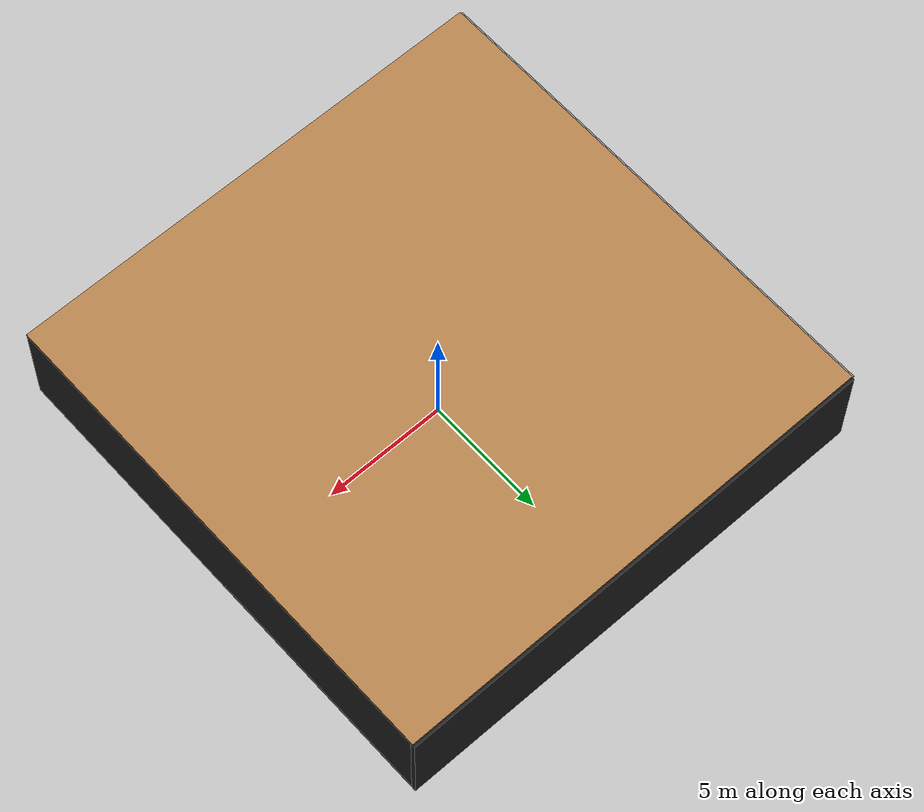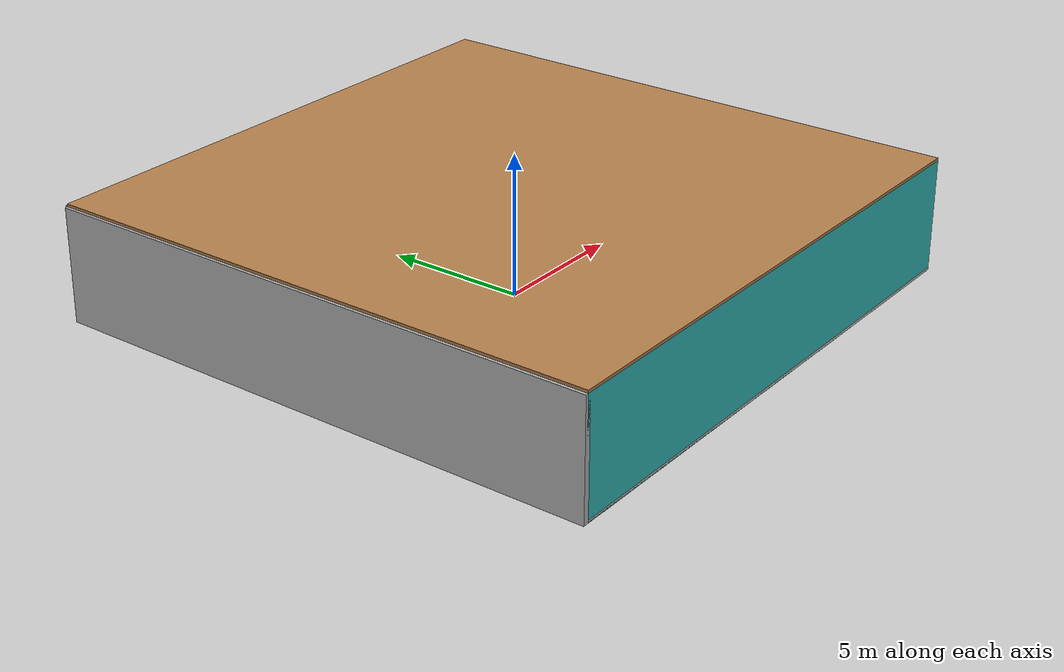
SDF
<sdf version="1.4">
 <world name="default">
  <physics type="ode">
   <max_step_size>0.001</max_step_size>
   <real_time_factor>1</real_time_factor>
   <real_time_update_rate>1000</real_time_update_rate>
   <gravity>0 0 -9.8</gravity>
  </physics>
  <scene><ambient>0.4 0.4 0.4 1</ambient><background>0.7 0.7 0.7 1</background><shadows>1</shadows></scene>
  <model name="Surrounding">
   <static>1</static>
   <link name="Ceiling">
    <collision name="Ceiling_Collision"><geometry><box><size>20 20 0.1</size></box></geometry></collision>
    <visual name="Ceiling_Visual">
     <geometry><box><size>20 20 0.1</size></box></geometry>
     <material>
      <script><uri>file://media/materials/scripts/gazebo.material</uri><name>Gazebo/WoodFloor</name></script>
     </material>
    </visual>
    <pose>0 0 4.05 0 0 0</pose>
   </link>
   <link name="Wall_South">
    <collision name="Wall_South_Collision">
     <geometry><box><size>20 0 4</size></box></geometry>
     <pose>0 0 2 0 -0 0</pose>
    </collision>
    <visual name="Wall_South_Visual">
     <pose>0 0 2 0 -0 0</pose>
     <geometry><box><size>20 0 4</size></box></geometry>
     <material>
      <script><uri>file://media/materials/scripts/gazebo.material</uri><name>Gazebo/Turquoise</name></script>
     </material>
    </visual>
    <velocity_decay><linear>0</linear><angular>0</angular></velocity_decay>
    <pose>0 -10 0 0 -0 0</pose>
   </link>
   <link name="Wall_East">
    <collision name="Wall_21_Collision">
     <geometry><box><size>20 0 4</size></box></geometry>
     <pose>0 0 2 0 -0 0</pose>
    </collision>
    <visual name="Wall_21_Visual">
     <pose>0 0 2 0 -0 0</pose>
     <geometry><box><size>20 0 4</size></box></geometry>
     <material>
      <script><uri>file://media/materials/scripts/gazebo.material</uri><name>Gazebo/Black</name></script>
     </material>
    </visual>
    <velocity_decay><linear>0</linear><angular>0</angular></velocity_decay>
    <pose>10 0 0 0 -0 1.5708</pose>
   </link>
   <link name="Wall_North">
    <collision name="Wall_22_Collision">
     <geometry><box><size>20 0.2 4</size></box></geometry>
     <pose>0 0 2 0 -0 0</pose>
    </collision>
    <visual name="Wall_22_Visual">
     <pose>0 0 2 0 -0 0</pose>
     <geometry><box><size>20 0.2 4</size></box></geometry>
     <material>
      <script><uri>file://media/materials/scripts/gazebo.material</uri><name>Gazebo/FlatBlack</name></script>
     </material>
    </visual>
    <velocity_decay><linear>0</linear><angular>0</angular></velocity_decay>
    <pose>0 10 0 0 -0 0</pose>
   </link>
   <link name="Wall_West">
    <collision name="Wall_23_Collision">
     <geometry><box><size>20 0.2 4</size></box></geometry>
     <pose>0 0 2 0 -0 0</pose>
    </collision>
    <visual name="Wall_23_Visual">
     <pose>0 0 2 0 -0 0</pose>
     <geometry><box><size>20 0.2 4</size></box></geometry>
     <material>
      <script><uri>file://media/materials/scripts/gazebo.material</uri><name>Gazebo/LightOn</name></script>
     </material>
    </visual>
    <velocity_decay><linear>0</linear><angular>0</angular></velocity_decay>
    <pose>-10 0 0 0 0 -1.5708</pose>
   </link>
   <link name="Ground_link">
    <collision name="collision">
     <pose>0 0 .05 0 -0 0</pose>
     <geometry><box><size>20 20 0.1</size></box></geometry>
    </collision>
    <visual name="visual">
     <pose>0 0 .05 0 -0 0</pose>
     <geometry><box><size>20 20 0.1</size></box></geometry>
     <material>
      <script><uri>file://media/materials/scripts/gazebo.material</uri><name>Gazebo/LightOff</name></script>
     </material>
    </visual>
   </link>
   <static>1</static>
  </model>
  <spherical_coordinates>
   <surface_model>EARTH_WGS84</surface_model>
   <latitude_deg>0</latitude_deg>
   <longitude_deg>0</longitude_deg>
   <elevation>0</elevation>
   <heading_deg>0</heading_deg>
  </spherical_coordinates>
  <light name="lightball_0" type="diffuse">
   <diffuse>0.8 0.8 0.8 1</diffuse>
   <specular>0.2 0.2 0.2 1</specular>
   <attenuation>
    <range>100</range>
    <constant>0.7</constant>
    <linear>0.01</linear>
    <quadratic>0.001</quadratic>
   </attenuation>
   <direction>-0.5 0.1 -0.9</direction>
   <pose>-3.38787071307 0.928319386686 1.12581315194 0 0 0</pose>
  </light>
  <light name="lightball_1" type="diffuse">
   <diffuse>0.8 0.8 0.8 1</diffuse>
   <specular>0.2 0.2 0.2 1</specular>
   <attenuation>
    <range>100</range>
    <constant>0.7</constant>
    <linear>0.01</linear>
    <quadratic>0.001</quadratic>
   </attenuation>
   <direction>-0.5 0.1 -0.9</direction>
   <pose>0.876768546298 -0.190821733325 3.03564005849 0 0 0</pose>
  </light>
  <light name="lightball_2" type="diffuse">
   <diffuse>0.8 0.8 0.8 1</diffuse>
   <specular>0.2 0.2 0.2 1</specular>
   <attenuation>
    <range>100</range>
    <constant>0.7</constant>
    <linear>0.01</linear>
    <quadratic>0.001</quadratic>
   </attenuation>
   <direction>-0.5 0.1 -0.9</direction>
   <pose>1.25218898894 3.16093044849 3.75813490686 0 0 0</pose>
  </light>
  <light name="lightball_3" type="diffuse">
   <diffuse>0.8 0.8 0.8 1</diffuse>
   <specular>0.2 0.2 0.2 1</specular>
   <attenuation>
    <range>100</range>
    <constant>0.7</constant>
    <linear>0.01</linear>
    <quadratic>0.001</quadratic>
   </attenuation>
   <direction>-0.5 0.1 -0.9</direction>
   <pose>-3.70538437662 -7.24126499355 2.17343225704 0 0 0</pose>
  </light>
  <light name="lightball_4" type="diffuse">
   <diffuse>0.8 0.8 0.8 1</diffuse>
   <specular>0.2 0.2 0.2 1</specular>
   <attenuation>
    <range>100</range>
    <constant>0.7</constant>
    <linear>0.01</linear>
    <quadratic>0.001</quadratic>
   </attenuation>
   <direction>-0.5 0.1 -0.9</direction>
   <pose>-0.689865298362 -6.02892492247 1.61869625004 0 0 0</pose>
  </light>
  <light name="lightball_5" type="diffuse">
   <diffuse>0.8 0.8 0.8 1</diffuse>
   <specular>0.2 0.2 0.2 1</specular>
   <attenuation>
    <range>100</range>
    <constant>0.7</constant>
    <linear>0.01</linear>
    <quadratic>0.001</quadratic>
   </attenuation>
   <direction>-0.5 0.1 -0.9</direction>
   <pose>-1.35022869283 -9.15940785391 2.92890353581 0 0 0</pose>
  </light>
  <light name="lightball_6" type="diffuse">
   <diffuse>0.8 0.8 0.8 1</diffuse>
   <specular>0.2 0.2 0.2 1</specular>
   <attenuation>
    <range>100</range>
    <constant>0.7</constant>
    <linear>0.01</linear>
    <quadratic>0.001</quadratic>
   </attenuation>
   <direction>-0.5 0.1 -0.9</direction>
   <pose>-0.918830954977 -2.32375030456 2.24797383387 0 0 0</pose>
  </light>
  <light name="lightball_7" type="diffuse">
   <diffuse>0.8 0.8 0.8 1</diffuse>
   <specular>0.2 0.2 0.2 1</specular>
   <attenuation>
    <range>100</range>
    <constant>0.7</constant>
    <linear>0.01</linear>
    <quadratic>0.001</quadratic>
   </attenuation>
   <direction>-0.5 0.1 -0.9</direction>
   <pose>5.29616047042 -3.89477608845 1.48710126163 0 0 0</pose>
  </light>
  <light name="lightball_8" type="diffuse">
   <diffuse>0.8 0.8 0.8 1</diffuse>
   <specular>0.2 0.2 0.2 1</specular>
   <attenuation>
    <range>100</range>
    <constant>0.7</constant>
    <linear>0.01</linear>
    <quadratic>0.001</quadratic>
   </attenuation>
   <direction>-0.5 0.1 -0.9</direction>
   <pose>-6.31952392835 -6.98638125571 0.618717208153 0 0 0</pose>
  </light>
  <light name="lightball_9" type="diffuse">
   <diffuse>0.8 0.8 0.8 1</diffuse>
   <specular>0.2 0.2 0.2 1</specular>
   <attenuation>
    <range>100</range>
    <constant>0.7</constant>
    <linear>0.01</linear>
    <quadratic>0.001</quadratic>
   </attenuation>
   <direction>-0.5 0.1 -0.9</direction>
   <pose>5.99612481671 -0.947819726494 2.03857385661 0 0 0</pose>
  </light>
  <light name="lightball_10" type="diffuse">
   <diffuse>0.8 0.8 0.8 1</diffuse>
   <specular>0.2 0.2 0.2 1</specular>
   <attenuation>
    <range>100</range>
    <constant>0.7</constant>
    <linear>0.01</linear>
    <quadratic>0.001</quadratic>
   </attenuation>
   <direction>-0.5 0.1 -0.9</direction>
   <pose>-1.87491275872 5.38435805558 2.60575917526 0 0 0</pose>
  </light>
  <include><uri>model://table</uri><pose>-8.29933589901 8.019826426 0 0 0 1.81672992165</pose></include>
  <include>
   <uri>model://construction_cone</uri>
   <pose>-4.52831258957 2.06443988367 0 0 0 0.596032104436</pose>
  </include>
  <include><uri>model://cabinet</uri><pose>-1.77860283611 -4.80136319526 0 0 0 2.56908797688</pose></include>
  <include>
   <uri>model://textured_shapes</uri>
   <pose>1.36439984571 1.11957311045 0 0 0 2.18006915416</pose>
  </include>
  <include>
   <uri>model://textured_shapes</uri>
   <pose>1.7932704939 7.21324132105 0 0 0 2.74308538461</pose>
  </include>
  <include>
   <uri>model://robocup_3Dsim_goal</uri>
   <pose>4.24686118165 -4.62570012816 0 0 0 1.05571787291</pose>
  </include>
  <include>
   <uri>model://construction_cone</uri>
   <pose>5.14896664793 0.812247200669 0 0 0 0.26272631512</pose>
  </include>
  <include>
   <uri>model://textured_shapes</uri>
   <pose>7.39681137001 5.07130903745 0 0 0 1.04796957553</pose>
  </include>
  <include><uri>model://table</uri><pose>8.00065910832 8.26872078548 0 0 0 2.10126943231</pose></include>
 </world>
</sdf>

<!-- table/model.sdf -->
<sdf version="1.5">
  <model name="table">
    <static>true</static>
    <link name="link">
      <collision name="surface">
        <pose>0 0 1.0 0 0 0</pose>
        <geometry>
          <box>
            <size>1.5 0.8 0.03</size>
          </box>
        </geometry>
        <surface>
          <friction>
            <ode>
              <mu>0.6</mu>
              <mu2>0.6</mu2>
            </ode>
          </friction>
        </surface>
      </collision>
      <visual name="visual1">
        <pose>0 0 1.0 0 0 0</pose>
        <geometry>
          <box>
            <size>1.5 0.8 0.03</size>
          </box>
        </geometry>
        <material>
          <script>
            <uri>model://media/materials/scripts/gazebo.material</uri>
            <name>Gazebo/Wood</name>
          </script>
        </material>
      </visual>
      <collision name="front_left_leg">
        <pose>0.68 0.38 0.5 0 0 0</pose>
        <geometry>
          <cylinder>
            <radius>0.02</radius>
            <length>1.0</length>
          </cylinder>
        </geometry>
      </collision>
      <visual name="front_left_leg">
        <pose>0.68 0.38 0.5 0 0 0</pose>
        <geometry>
          <cylinder>
            <radius>0.02</radius>
            <length>1.0</length>
          </cylinder>
        </geometry>
        <material>
          <script>
            <uri>model://media/materials/scripts/gazebo.material</uri>
            <name>Gazebo/Grey</name>
          </script>
        </material>
      </visual>
      <collision name="front_right_leg">
        <pose>0.68 -0.38 0.5 0 0 0</pose>
        <geometry>
          <cylinder>
            <radius>0.02</radius>
            <length>1.0</length>
          </cylinder>
        </geometry>
      </collision>
      <visual name="front_right_leg">
        <pose>0.68 -0.38 0.5 0 0 0</pose>
        <geometry>
          <cylinder>
            <radius>0.02</radius>
            <length>1.0</length>
          </cylinder>
        </geometry>
        <material>
          <script>
            <uri>model://media/materials/scripts/gazebo.material</uri>
            <name>Gazebo/Grey</name>
          </script>
        </material>
      </visual>
      <collision name="back_right_leg">
        <pose>-0.68 -0.38 0.5 0 0 0</pose>
        <geometry>
          <cylinder>
            <radius>0.02</radius>
            <length>1.0</length>
          </cylinder>
        </geometry>
      </collision>
      <visual name="back_right_leg">
        <pose>-0.68 -0.38 0.5 0 0 0</pose>
        <geometry>
          <cylinder>
            <radius>0.02</radius>
            <length>1.0</length>
          </cylinder>
        </geometry>
        <material>
          <script>
            <uri>model://media/materials/scripts/gazebo.material</uri>
            <name>Gazebo/Grey</name>
          </script>
        </material>
      </visual>
      <collision name="back_left_leg">
        <pose>-0.68 0.38 0.5 0 0 0</pose>
        <geometry>
          <cylinder>
            <radius>0.02</radius>
            <length>1.0</length>
          </cylinder>
        </geometry>
      </collision>
      <visual name="back_left_leg">
        <pose>-0.68 0.38 0.5 0 0 0</pose>
        <geometry>
          <cylinder>
            <radius>0.02</radius>
            <length>1.0</length>
          </cylinder>
        </geometry>
        <material>
          <script>
            <uri>model://media/materials/scripts/gazebo.material</uri>
            <name>Gazebo/Grey</name>
          </script>
        </material>
      </visual>
    </link>
  </model>
</sdf>

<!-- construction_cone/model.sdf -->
<sdf version="1.5">
  <model name="Construction Cone">
    <link name="link">
      <collision name="collision">
        <geometry>
          <mesh>
            <scale>10 10 10</scale>
            <uri>file://isr-testbed/construction_cone/meshes/construction_cone.dae</uri>
          </mesh>
        </geometry>
      </collision>
      <visual name="visual">
        <geometry>
          <mesh>
            <scale>10 10 10</scale>
            <uri>file://isr-testbed/construction_cone/meshes/construction_cone.dae</uri>
          </mesh>
        </geometry>
      </visual>
    </link>
  </model>
</sdf>

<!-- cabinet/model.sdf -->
<sdf version="1.5">
  <model name="cabinet">
    <static>true</static>
    <link name="cabinet_bottom_plate">
      <inertial>
        <pose>0 0 -1 0 0 0</pose>
        <inertia>
          <ixx>2.050000</ixx>
          <ixy>0</ixy>
          <ixz>0</ixz>
          <iyy>2.050000</iyy>
          <iyz>0</iyz>
          <izz>2.050000</izz>
        </inertia>
        <mass>25.000000</mass>
      </inertial>
      <collision name="cabinet_bottom_plate_geom">
        <pose>0 0 0.010000 0 0 0</pose>
        <geometry>
          <box>
            <size>0.450000 0.450000 0.020000</size>
          </box>
        </geometry>
      </collision>
      <visual name="cabinet_bottom_plate_geom_visual">
        <pose>0 0 0.010000 0 0 0</pose>
        <geometry>
          <box>
            <size>0.450000 0.450000 0.020000</size>
          </box>
        </geometry>
        <material>
          <script>
            <uri>model://media/materials/scripts/gazebo.material</uri>
            <name>Gazebo/Wood</name>
          </script>
        </material>
      </visual>
      <collision name="cabinet_bottom_plate_geom_cabinet_back_plate">
        <pose>0.235000 0 0.510000 0 0 0</pose>
        <geometry>
          <box>
            <size>0.020000 0.450000 1.020000</size>
          </box>
        </geometry>
      </collision>
      <visual name="cabinet_bottom_plate_geom_cabinet_back_plate_visual">
        <pose>0.235000 0 0.510000 0 0 0</pose>
        <geometry>
          <box>
            <size>0.020000 0.450000 1.020000</size>
          </box>
        </geometry>
        <material>
          <script>
            <uri>model://media/materials/scripts/gazebo.material</uri>
            <name>Gazebo/Wood</name>
          </script>
        </material>
      </visual>
      <collision name="cabinet_bottom_plate_geom_cabinet_left_plate">
        <pose>0 0.235000 0.510000 0 0 0</pose>
        <geometry>
          <box>
            <size>0.450000 0.020000 1.020000</size>
          </box>
        </geometry>
      </collision>
      <visual name="cabinet_bottom_plate_geom_cabinet_left_plate_visual">
        <pose>0 0.235000 0.510000 0 0 0</pose>
        <geometry>
          <box>
            <size>0.450000 0.020000 1.020000</size>
          </box>
        </geometry>
        <material>
          <script>
            <uri>model://media/materials/scripts/gazebo.material</uri>
            <name>Gazebo/Wood</name>
          </script>
        </material>
      </visual>
      <collision name="cabinet_bottom_plate_geom_cabinet_middle_plate">
        <pose>0 0 0.510000 0 0 0</pose>
        <geometry>
          <box>
            <size>0.450000 0.450000 0.020000</size>
          </box>
        </geometry>
      </collision>
      <visual name="cabinet_bottom_plate_geom_cabinet_middle_plate_visual">
        <pose>0 0 0.510000 0 0 0</pose>
        <geometry>
          <box>
            <size>0.450000 0.450000 0.020000</size>
          </box>
        </geometry>
        <material>
          <script>
            <uri>model://media/materials/scripts/gazebo.material</uri>
            <name>Gazebo/Wood</name>
          </script>
        </material>
      </visual>
      <collision name="cabinet_bottom_plate_geom_cabinet_right_plate">
        <pose>0 -0.235000 0.510000 0 0 0</pose>
        <geometry>
          <box>
            <size>0.450000 0.020000 1.020000</size>
          </box>
        </geometry>
      </collision>
      <visual name="cabinet_bottom_plate_geom_cabinet_right_plate_visual">
        <pose>0 -0.235000 0.510000 0 0 0</pose>
        <geometry>
          <box>
            <size>0.450000 0.020000 1.020000</size>
          </box>
        </geometry>
        <material>
          <script>
            <uri>model://media/materials/scripts/gazebo.material</uri>
            <name>Gazebo/Wood</name>
          </script>
        </material>
      </visual>
      <collision name="cabinet_bottom_plate_geom_cabinet_top_plate">
        <pose>0 0 1.010000 0 0 0</pose>
        <geometry>
          <box>
            <size>0.450000 0.450000 0.020000</size>
          </box>
        </geometry>
      </collision>
      <visual name="cabinet_bottom_plate_geom_cabinet_top_plate_visual">
        <pose>0 0 1.010000 0 0 0</pose>
        <geometry>
          <box>
            <size>0.450000 0.450000 0.020000</size>
          </box>
        </geometry>
        <material>
          <script>
            <uri>model://media/materials/scripts/gazebo.material</uri>
            <name>Gazebo/Wood</name>
          </script>
        </material>
      </visual>
    </link>
  </model>
</sdf>

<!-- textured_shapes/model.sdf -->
<sdf version="1.6">
  <model name="textured_shapes">
    <pose>0 0 0.5 0 0 0</pose>
    <link name="box">
      <pose>0 -1.5 0 0 0 0</pose>
      <collision name="collision">
        <geometry>
          <box>
            <size>1 1 1</size>
          </box>
        </geometry>
      </collision>
      <visual name="visual">
        <geometry>
          <box>
            <size>1 1 1</size>
          </box>
        </geometry>
        <material>
          <script>
            <uri>model://../model_source/models/textured_shapes/materials/scripts</uri>
            <uri>model://../model_source/models/textured_shapes/materials/textures</uri>
            <name>TexturedShape/Squares</name>
          </script>
        </material>
      </visual>
    </link>
    <link name="sphere">
      <collision name="collision">
        <geometry>
          <sphere>
            <radius>0.5</radius>
          </sphere>
        </geometry>
      </collision>
      <visual name="visual">
        <geometry>
          <sphere>
            <radius>0.5</radius>
          </sphere>
        </geometry>
        <material>
          <script>
            <uri>model://../model_source/models/textured_shapes/materials/scripts</uri>
            <uri>model://../model_source/models/textured_shapes/materials/textures</uri>
            <name>TexturedShape/Squares</name>
          </script>
        </material>
      </visual>
    </link>
    <link name="cylinder">
      <pose>0 1.5 0 0 0 0</pose>
      <collision name="collision">
        <geometry>
          <cylinder>
            <radius>0.5</radius>
            <length>1</length>
          </cylinder>
        </geometry>
      </collision>
      <visual name="visual">
        <geometry>
          <cylinder>
            <radius>0.5</radius>
            <length>1</length>
          </cylinder>
        </geometry>
        <material>
          <script>
            <uri>model://../model_source/models/textured_shapes/materials/scripts</uri>
            <uri>model://../model_source/models/textured_shapes/materials/textures</uri>
            <name>TexturedShape/Squares</name>
          </script>
        </material>
      </visual>
    </link>
  </model>
</sdf>

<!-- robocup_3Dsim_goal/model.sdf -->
<sdf version="1.5">
  <model name="robocup_3d_goal">
    <static>true</static>
    <link name="left_post">
      <pose>0 1.05 0.45 0 0 0</pose>
      <collision name="collision">
        <geometry>
          <cylinder>
            <radius>0.05</radius>
            <length>0.9</length>
          </cylinder>
        </geometry>
      </collision>
      <visual name="visual">
        <geometry>
          <cylinder>
            <radius>0.05</radius>
            <length>0.9</length>
          </cylinder>
        </geometry>
        <material>
          <script>
            <uri>file://media/materials/scripts/gazebo.material</uri>
            <name>Gazebo/ZincYellow</name>
          </script>
        </material>
      </visual>
    </link>
    <link name="left_support_horiz_lower">
      <pose>0.30 1.05 0.01 0 0 0</pose>
      <collision name="collision">
        <geometry>
          <box>
            <size>0.50 0.02 0.02</size>
          </box>
        </geometry>
      </collision>
      <visual name="visual">
        <geometry>
          <box>
            <size>0.50 0.02 0.02</size>
          </box>
        </geometry>
        <material>
          <script>
            <uri>file://media/materials/scripts/gazebo.material</uri>
            <name>Gazebo/White</name>
          </script>
        </material>
      </visual>
    </link>
    <link name="left_support_horiz_upper">
      <pose>0.30 1.05 0.79 0 0 0</pose>
      <collision name="collision">
        <geometry>
          <box>
            <size>0.50 0.02 0.02</size>
          </box>
        </geometry>
      </collision>
      <visual name="visual">
        <geometry>
          <box>
            <size>0.50 0.02 0.02</size>
          </box>
        </geometry>
        <material>
          <script>
            <uri>file://media/materials/scripts/gazebo.material</uri>
            <name>Gazebo/White</name>
          </script>
        </material>
      </visual>
    </link>
    <link name="left_support_vertical">
      <pose>0.56 1.05 0.4 0 1.5708 0</pose>
      <collision name="collision">
        <geometry>
          <box>
            <size>0.80 0.02 0.02</size>
          </box>
        </geometry>
      </collision>
      <visual name="visual">
        <geometry>
          <box>
            <size>0.80 0.02 0.02</size>
          </box>
        </geometry>
        <material>
          <script>
            <uri>file://media/materials/scripts/gazebo.material</uri>
            <name>Gazebo/White</name>
          </script>
        </material>
      </visual>
    </link>
    <link name="right_support_horiz_lower">
      <pose>0.30 -1.05 0.01 0 0 0</pose>
      <collision name="collision">
        <geometry>
          <box>
            <size>0.50 0.02 0.02</size>
          </box>
        </geometry>
      </collision>
      <visual name="visual">
        <geometry>
          <box>
            <size>0.50 0.02 0.02</size>
          </box>
        </geometry>
        <material>
          <script>
            <uri>file://media/materials/scripts/gazebo.material</uri>
            <name>Gazebo/White</name>
          </script>
        </material>
      </visual>
    </link>
    <link name="right_support_horiz_upper">
      <pose>0.30 -1.05 0.79 0 0 0</pose>
      <collision name="collision">
        <geometry>
          <box>
            <size>0.50 0.02 0.02</size>
          </box>
        </geometry>
      </collision>
      <visual name="visual">
        <geometry>
          <box>
            <size>0.50 0.02 0.02</size>
          </box>
        </geometry>
        <material>
          <script>
            <uri>file://media/materials/scripts/gazebo.material</uri>
            <name>Gazebo/White</name>
          </script>
        </material>
      </visual>
    </link>
    <link name="right_support_vertical">
      <pose>0.56 -1.05 0.4 0 1.5708 0</pose>
      <collision name="collision">
        <geometry>
          <box>
            <size>0.80 0.02 0.02</size>
          </box>
        </geometry>
      </collision>
      <visual name="visual">
        <geometry>
          <box>
            <size>0.80 0.02 0.02</size>
          </box>
        </geometry>
        <material>
          <script>
            <uri>file://media/materials/scripts/gazebo.material</uri>
            <name>Gazebo/White</name>
          </script>
        </material>
      </visual>
    </link>
    <link name="center_support_horiz_lower">
      <pose>0.56 0 0.01 0 1.5708 0</pose>
      <collision name="collision">
        <geometry>
          <box>
            <size>0.02 2.08 0.02</size>
          </box>
        </geometry>
      </collision>
      <visual name="visual">
        <geometry>
          <box>
            <size>0.02 2.08 0.02</size>
          </box>
        </geometry>
        <material>
          <script>
            <uri>file://media/materials/scripts/gazebo.material</uri>
            <name>Gazebo/White</name>
          </script>
        </material>
      </visual>
    </link>
    <link name="center_support_horiz_upper">
      <pose>0.56 0 0.79 0 1.5708 0</pose>
      <collision name="collision">
        <geometry>
          <box>
            <size>0.02 2.08 0.02</size>
          </box>
        </geometry>
      </collision>
      <visual name="visual">
        <geometry>
          <box>
            <size>0.02 2.08 0.02</size>
          </box>
        </geometry>
        <material>
          <script>
            <uri>file://media/materials/scripts/gazebo.material</uri>
            <name>Gazebo/White</name>
          </script>
        </material>
      </visual>
    </link>
    <link name="right_post">
      <pose>0 -1.05 0.45 0 0 0</pose>
      <collision name="collision">
        <geometry>
          <cylinder>
            <radius>0.05</radius>
            <length>0.9</length>
          </cylinder>
        </geometry>
      </collision>
      <visual name="visual">
        <geometry>
          <cylinder>
            <radius>0.05</radius>
            <length>0.9</length>
          </cylinder>
        </geometry>
        <material>
          <script>
            <uri>file://media/materials/scripts/gazebo.material</uri>
            <name>Gazebo/ZincYellow</name>
          </script>
        </material>
      </visual>
    </link>
    <link name="crossbar">
      <pose>0 0 0.85 1.57 1.57 0</pose>
      <collision name="collision">
        <geometry>
          <cylinder>
            <radius>0.05</radius>
            <length>2.0</length>
          </cylinder>
        </geometry>
      </collision>
      <visual name="visual">
        <geometry>
          <cylinder>
            <radius>0.05</radius>
            <length>2.0</length>
          </cylinder>
        </geometry>
        <material>
          <script>
            <uri>file://media/materials/scripts/gazebo.material</uri>
            <name>Gazebo/ZincYellow</name>
          </script>
        </material>
      </visual>
    </link>
    <link name="center_net">
      <pose>0.56 0 0.40 0 0 0</pose>
      <collision name="collision">
        <geometry>
          <box>
            <size>0.01 2.1 0.80</size>
          </box>
        </geometry>
      </collision>
      <visual name="visual">
        <geometry>
          <box>
            <size>0.01 2.1 0.80</size>
          </box>
        </geometry>
        <material>
          <script>
            <uri>model://../model_source/models/robocup09_spl_field/materials/scripts/</uri>
            <uri>model://../model_source/models/robocup09_spl_field/materials/textures/</uri>
            <name>RoboCup/Net</name>
          </script>
        </material>
      </visual>
    </link>
    <link name="left_net">
      <pose>0.30 1.05 0.40 0 0 0</pose>
      <collision name="collision">
        <geometry>
          <box>
            <size>0.50 0.01 0.76</size>
          </box>
        </geometry>
      </collision>
      <visual name="visual">
        <geometry>
          <box>
            <size>0.50 0.01 0.76</size>
          </box>
        </geometry>
        <material>
          <script>
            <uri>model://../model_source/models/robocup09_spl_field/materials/scripts/</uri>
            <uri>model://../model_source/models/robocup09_spl_field/materials/textures/</uri>
            <name>RoboCup/Net</name>
          </script>
        </material>
      </visual>
    </link>
    <link name="right_net">
      <pose>0.30 -1.05 0.40 0 0 0</pose>
      <collision name="collision">
        <geometry>
          <box>
            <size>0.50 0.01 0.76</size>
          </box>
        </geometry>
      </collision>
      <visual name="visual">
        <geometry>
          <box>
            <size>0.50 0.01 0.76</size>
          </box>
        </geometry>
        <material>
          <script>
            <uri>model://../model_source/models/robocup09_spl_field/materials/scripts/</uri>
            <uri>model://../model_source/models/robocup09_spl_field/materials/textures/</uri>
            <name>RoboCup/Net</name>
          </script>
        </material>
      </visual>
    </link>
  </model>
</sdf>
